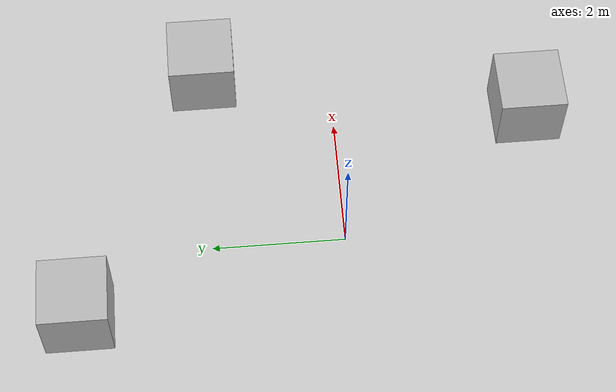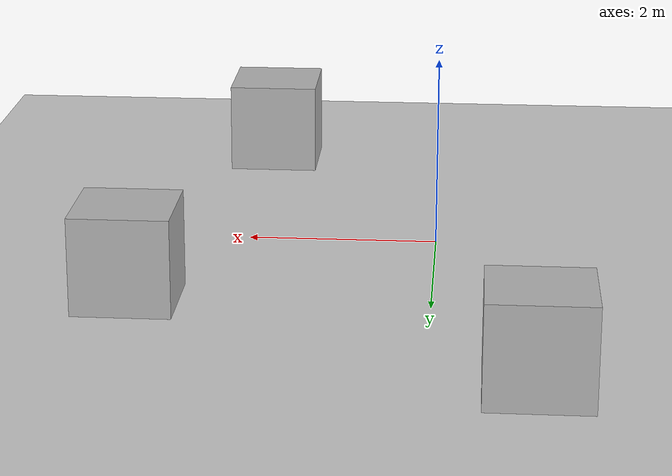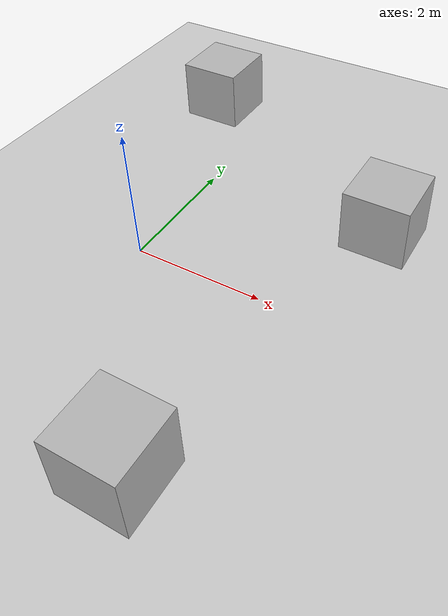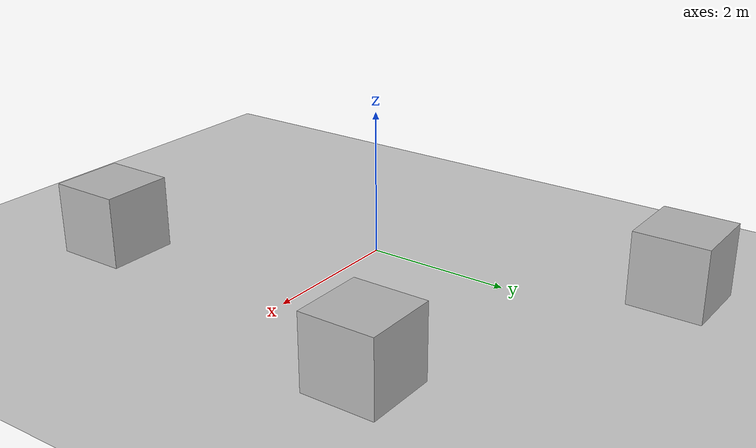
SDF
<!-- obstacles.world -->
<sdf version="1.6">
  <world name="default">
    <include>
      <uri>model://sun</uri>
    </include>
    <include>
      <uri>model://ground_plane</uri>
    </include>

    <model name="obstacle_1">
      <pose>3 2 0.5 0 0 0</pose>
      <static>true</static>
      <link name="link">
        <collision name="collision">
          <geometry><box><size>1 1 1</size></box></geometry>
        </collision>
        <visual name="visual">
          <geometry><box><size>1 1 1</size></box></geometry>
        </visual>
      </link>
    </model>

    <model name="obstacle_2">
      <pose>-1 4 0.5 0 0 0</pose>
      <static>true</static>
      <link name="link">
        <collision name="collision">
          <geometry><box><size>1 1 1</size></box></geometry>
        </collision>
        <visual name="visual">
          <geometry><box><size>1 1 1</size></box></geometry>
        </visual>
      </link>
    </model>

    <model name="obstacle_3">
      <pose>2 -3 0.5 0 0 0</pose>
      <static>true</static>
      <link name="link">
        <collision name="collision">
          <geometry><box><size>1 1 1</size></box></geometry>
        </collision>
        <visual name="visual">
          <geometry><box><size>1 1 1</size></box></geometry>
        </visual>
      </link>
    </model>
  </world>
</sdf>
